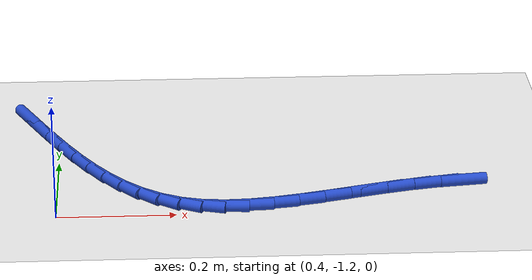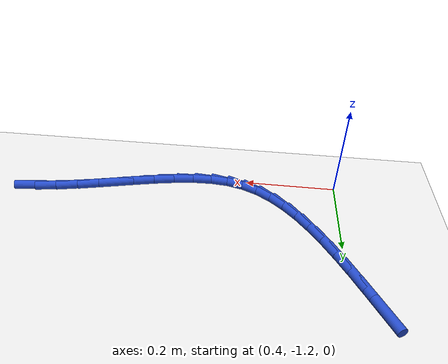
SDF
<sdf version="1.6">
 <world name="default">
  <model name="ground_plane">
   <static>1</static>
   <link name="link">
    <collision name="collision">
     <geometry><plane><normal>0 0 1</normal><size>100 100</size></plane></geometry>
     <surface><friction><ode><mu>100</mu><mu2>50</mu2></ode></friction></surface>
    </collision>
    <visual name="visual">
     <cast_shadows>0</cast_shadows>
     <geometry><plane><normal>0 0 1</normal><size>100 100</size></plane></geometry>
     <material>
      <script><uri>file://media/materials/scripts/gazebo.material</uri><name>Gazebo/WhiteGlow</name></script>
     </material>
    </visual>
   </link>
  </model>
  <model name="line">
   <link name="link_129">
    <pose>1.088610599090246 -1.1118667538205207 0.01 0 1.57 0.11857320169903744</pose>
    <collision name="collision">
     <geometry><cylinder><radius>0.01</radius><length>0.08</length></cylinder></geometry>
    </collision>
    <visual name="visual">
     <material>
      <script><name>Gazebo/Blue</name><uri>file://media/materials/scripts/gazebo.material</uri></script>
     </material>
     <geometry><cylinder><radius>0.01</radius><length>0.08</length></cylinder></geometry>
    </visual>
   </link>
   <link name="link_130">
    <pose>1.0414970737304725 -1.1174794843102964 0.01 0 1.57 0.18346965577117766</pose>
    <collision name="collision">
     <geometry><cylinder><radius>0.01</radius><length>0.08</length></cylinder></geometry>
    </collision>
    <visual name="visual">
     <material>
      <script><name>Gazebo/Blue</name><uri>file://media/materials/scripts/gazebo.material</uri></script>
     </material>
     <geometry><cylinder><radius>0.01</radius><length>0.08</length></cylinder></geometry>
    </visual>
   </link>
   <link name="link_131">
    <pose>0.9941546934465196 -1.1262641637959747 0.01 0 1.57 0.22742923248835017</pose>
    <collision name="collision">
     <geometry><cylinder><radius>0.01</radius><length>0.08</length></cylinder></geometry>
    </collision>
    <visual name="visual">
     <material>
      <script><name>Gazebo/Blue</name><uri>file://media/materials/scripts/gazebo.material</uri></script>
     </material>
     <geometry><cylinder><radius>0.01</radius><length>0.08</length></cylinder></geometry>
    </visual>
   </link>
   <link name="link_132">
    <pose>0.9468825833371377 -1.1372045034169578 0.01 0 1.57 0.2512794198718112</pose>
    <collision name="collision">
     <geometry><cylinder><radius>0.01</radius><length>0.08</length></cylinder></geometry>
    </collision>
    <visual name="visual">
     <material>
      <script><name>Gazebo/Blue</name><uri>file://media/materials/scripts/gazebo.material</uri></script>
     </material>
     <geometry><cylinder><radius>0.01</radius><length>0.08</length></cylinder></geometry>
    </visual>
   </link>
   <link name="link_133">
    <pose>0.8999797539019428 -1.1492447038499536 0.01 0 1.57 0.25564968053645654</pose>
    <collision name="collision">
     <geometry><cylinder><radius>0.01</radius><length>0.08</length></cylinder></geometry>
    </collision>
    <visual name="visual">
     <material>
      <script><name>Gazebo/Blue</name><uri>file://media/materials/scripts/gazebo.material</uri></script>
     </material>
     <geometry><cylinder><radius>0.01</radius><length>0.08</length></cylinder></geometry>
    </visual>
   </link>
   <link name="link_134">
    <pose>0.8537452156405535 -1.161328965771671 0.01 0 1.57 0.23989318203060073</pose>
    <collision name="collision">
     <geometry><cylinder><radius>0.01</radius><length>0.08</length></cylinder></geometry>
    </collision>
    <visual name="visual">
     <material>
      <script><name>Gazebo/Blue</name><uri>file://media/materials/scripts/gazebo.material</uri></script>
     </material>
     <geometry><cylinder><radius>0.01</radius><length>0.08</length></cylinder></geometry>
    </visual>
   </link>
   <link name="link_135">
    <pose>0.8084779790525864 -1.172401489858818 0.01 0 1.57 0.20186700282261694</pose>
    <collision name="collision">
     <geometry><cylinder><radius>0.01</radius><length>0.08</length></cylinder></geometry>
    </collision>
    <visual name="visual">
     <material>
      <script><name>Gazebo/Blue</name><uri>file://media/materials/scripts/gazebo.material</uri></script>
     </material>
     <geometry><cylinder><radius>0.01</radius><length>0.08</length></cylinder></geometry>
    </visual>
   </link>
   <link name="link_136">
    <pose>0.7644770546376586 -1.1814064767881032 0.01 0 1.57 0.13772434912940013</pose>
    <collision name="collision">
     <geometry><cylinder><radius>0.01</radius><length>0.08</length></cylinder></geometry>
    </collision>
    <visual name="visual">
     <material>
      <script><name>Gazebo/Blue</name><uri>file://media/materials/scripts/gazebo.material</uri></script>
     </material>
     <geometry><cylinder><radius>0.01</radius><length>0.08</length></cylinder></geometry>
    </visual>
   </link>
   <link name="link_137">
    <pose>0.7220414528953887 -1.1872881272362341 0.01 0 1.57 0.04193894882277703</pose>
    <collision name="collision">
     <geometry><cylinder><radius>0.01</radius><length>0.08</length></cylinder></geometry>
    </collision>
    <visual name="visual">
     <material>
      <script><name>Gazebo/Blue</name><uri>file://media/materials/scripts/gazebo.material</uri></script>
     </material>
     <geometry><cylinder><radius>0.01</radius><length>0.08</length></cylinder></geometry>
    </visual>
   </link>
   <link name="link_138">
    <pose>0.6814701843253941 -1.1889906418799208 0.01 0 1.57 -0.09171312575239733</pose>
    <collision name="collision">
     <geometry><cylinder><radius>0.01</radius><length>0.08</length></cylinder></geometry>
    </collision>
    <visual name="visual">
     <material>
      <script><name>Gazebo/Blue</name><uri>file://media/materials/scripts/gazebo.material</uri></script>
     </material>
     <geometry><cylinder><radius>0.01</radius><length>0.08</length></cylinder></geometry>
    </visual>
   </link>
   <link name="link_139">
    <pose>0.6430622594272918 -1.1854582213958698 0.01 0 1.57 -0.2657052839786733</pose>
    <collision name="collision">
     <geometry><cylinder><radius>0.01</radius><length>0.08</length></cylinder></geometry>
    </collision>
    <visual name="visual">
     <material>
      <script><name>Gazebo/Blue</name><uri>file://media/materials/scripts/gazebo.material</uri></script>
     </material>
     <geometry><cylinder><radius>0.01</radius><length>0.08</length></cylinder></geometry>
    </visual>
   </link>
   <link name="link_140">
    <pose>0.6071045064576392 -1.1756726811421387 0.01 0 1.57 -0.451293311133345</pose>
    <collision name="collision">
     <geometry><cylinder><radius>0.01</radius><length>0.08</length></cylinder></geometry>
    </collision>
    <visual name="visual">
     <material>
      <script><name>Gazebo/Blue</name><uri>file://media/materials/scripts/gazebo.material</uri></script>
     </material>
     <geometry><cylinder><radius>0.01</radius><length>0.08</length></cylinder></geometry>
    </visual>
   </link>
   <link name="link_141">
    <pose>0.5736160370489032 -1.1594424556352694 0.01 0 1.57 -0.614536780774675</pose>
    <collision name="collision">
     <geometry><cylinder><radius>0.01</radius><length>0.08</length></cylinder></geometry>
    </collision>
    <visual name="visual">
     <material>
      <script><name>Gazebo/Blue</name><uri>file://media/materials/scripts/gazebo.material</uri></script>
     </material>
     <geometry><cylinder><radius>0.01</radius><length>0.08</length></cylinder></geometry>
    </visual>
   </link>
   <link name="link_142">
    <pose>0.5423549986426092 -1.1373817493010978 0.01 0 1.57 -0.7492780435809783</pose>
    <collision name="collision">
     <geometry><cylinder><radius>0.01</radius><length>0.08</length></cylinder></geometry>
    </collision>
    <visual name="visual">
     <material>
      <script><name>Gazebo/Blue</name><uri>file://media/materials/scripts/gazebo.material</uri></script>
     </material>
     <geometry><cylinder><radius>0.01</radius><length>0.08</length></cylinder></geometry>
    </visual>
   </link>
   <link name="link_143">
    <pose>0.5130687072001361 -1.1101382105439057 0.01 0 1.57 -0.8562984123573705</pose>
    <collision name="collision">
     <geometry><cylinder><radius>0.01</radius><length>0.08</length></cylinder></geometry>
    </collision>
    <visual name="visual">
     <material>
      <script><name>Gazebo/Blue</name><uri>file://media/materials/scripts/gazebo.material</uri></script>
     </material>
     <geometry><cylinder><radius>0.01</radius><length>0.08</length></cylinder></geometry>
    </visual>
   </link>
   <link name="link_144">
    <pose>0.4855044786828617 -1.0783594877679754 0.01 0 1.57 -0.9391497502340836</pose>
    <collision name="collision">
     <geometry><cylinder><radius>0.01</radius><length>0.08</length></cylinder></geometry>
    </collision>
    <visual name="visual">
     <material>
      <script><name>Gazebo/Blue</name><uri>file://media/materials/scripts/gazebo.material</uri></script>
     </material>
     <geometry><cylinder><radius>0.01</radius><length>0.08</length></cylinder></geometry>
    </visual>
   </link>
   <link name="link_145">
    <pose>0.4594096290521628 -1.0426932293775857 0.01 0 1.57 -1.001880347612717</pose>
    <collision name="collision">
     <geometry><cylinder><radius>0.01</radius><length>0.08</length></cylinder></geometry>
    </collision>
    <visual name="visual">
     <material>
      <script><name>Gazebo/Blue</name><uri>file://media/materials/scripts/gazebo.material</uri></script>
     </material>
     <geometry><cylinder><radius>0.01</radius><length>0.08</length></cylinder></geometry>
    </visual>
   </link>
   <link name="link_146">
    <pose>0.43453147426941763 -1.003787083777019 0.01 0 1.57 -1.048010483921038</pose>
    <collision name="collision">
     <geometry><cylinder><radius>0.01</radius><length>0.08</length></cylinder></geometry>
    </collision>
    <visual name="visual">
     <material>
      <script><name>Gazebo/Blue</name><uri>file://media/materials/scripts/gazebo.material</uri></script>
     </material>
     <geometry><cylinder><radius>0.01</radius><length>0.08</length></cylinder></geometry>
    </visual>
   </link>
   <link name="link_147">
    <pose>0.41061733029600367 -0.962288699370556 0.01 0 1.57 -1.0802436594827522</pose>
    <collision name="collision">
     <geometry><cylinder><radius>0.01</radius><length>0.08</length></cylinder></geometry>
    </collision>
    <visual name="visual">
     <material>
      <script><name>Gazebo/Blue</name><uri>file://media/materials/scripts/gazebo.material</uri></script>
     </material>
     <geometry><cylinder><radius>0.01</radius><length>0.08</length></cylinder></geometry>
    </visual>
   </link>
   <link name="link_148">
    <pose>0.38741451309329933 -0.9188457245624789 0.01 0 1.57 -1.1004797255439875</pose>
    <collision name="collision">
     <geometry><cylinder><radius>0.01</radius><length>0.08</length></cylinder></geometry>
    </collision>
    <visual name="visual">
     <material>
      <script><name>Gazebo/Blue</name><uri>file://media/materials/scripts/gazebo.material</uri></script>
     </material>
     <geometry><cylinder><radius>0.01</radius><length>0.08</length></cylinder></geometry>
    </visual>
   </link>
   <link name="link_149">
    <pose>0.36467033862268206 -0.8741058077570685 0.01 0 1.57 -1.1099089307626622</pose>
    <collision name="collision">
     <geometry><cylinder><radius>0.01</radius><length>0.08</length></cylinder></geometry>
    </collision>
    <visual name="visual">
     <material>
      <script><name>Gazebo/Blue</name><uri>file://media/materials/scripts/gazebo.material</uri></script>
     </material>
     <geometry><cylinder><radius>0.01</radius><length>0.08</length></cylinder></geometry>
    </visual>
   </link>
   <link name="link_150">
    <pose>0.3421321228455296 -0.8287165973586058 0.01 0 1.57 -1.1090979070687674</pose>
    <collision name="collision">
     <geometry><cylinder><radius>0.01</radius><length>0.08</length></cylinder></geometry>
    </collision>
    <visual name="visual">
     <material>
      <script><name>Gazebo/Blue</name><uri>file://media/materials/scripts/gazebo.material</uri></script>
     </material>
     <geometry><cylinder><radius>0.01</radius><length>0.08</length></cylinder></geometry>
    </visual>
   </link>
  </model>
 </world>
</sdf>
